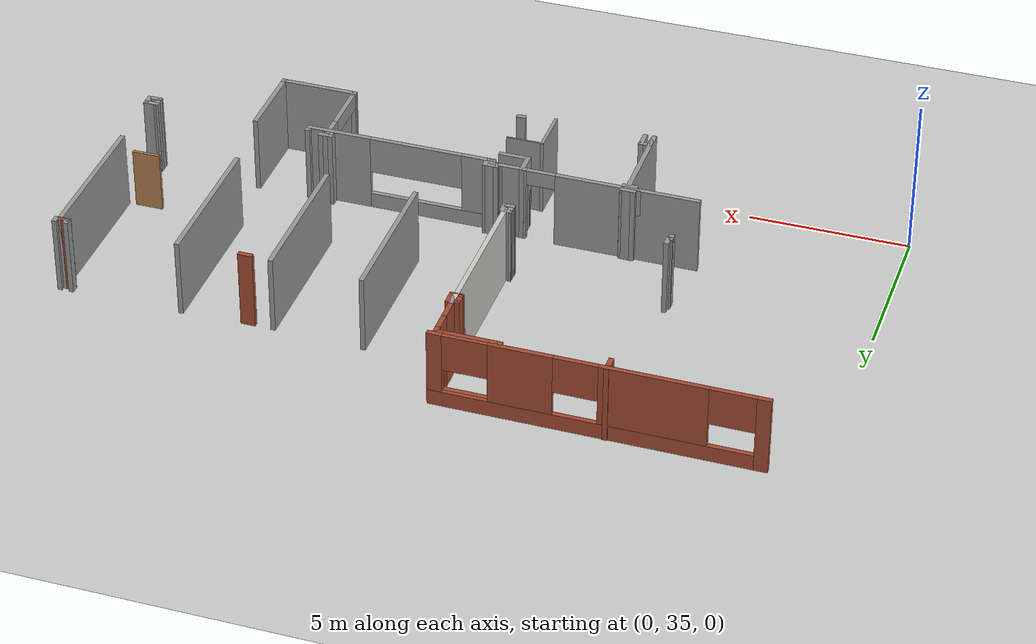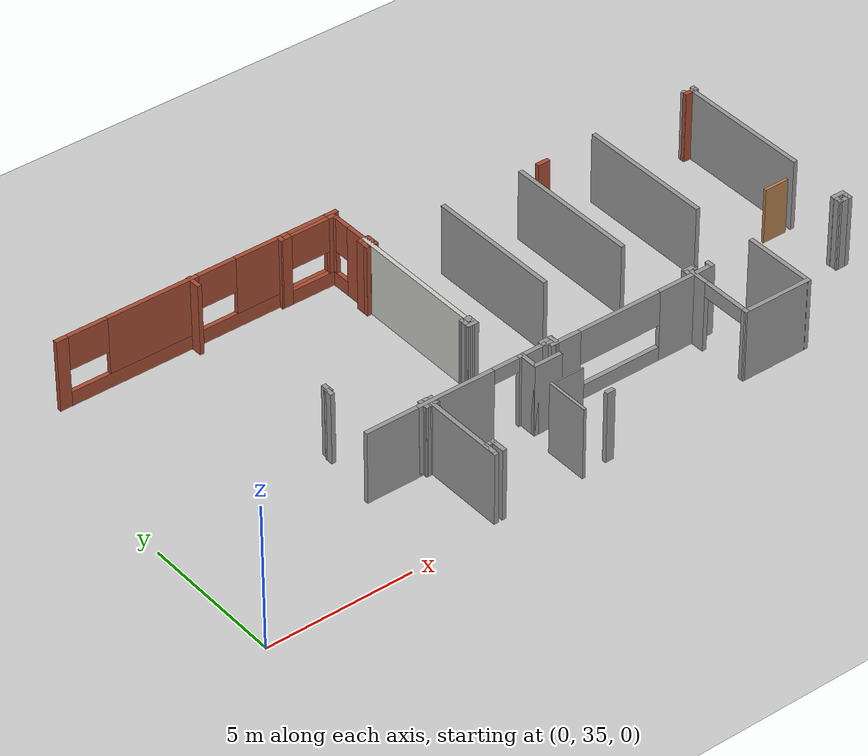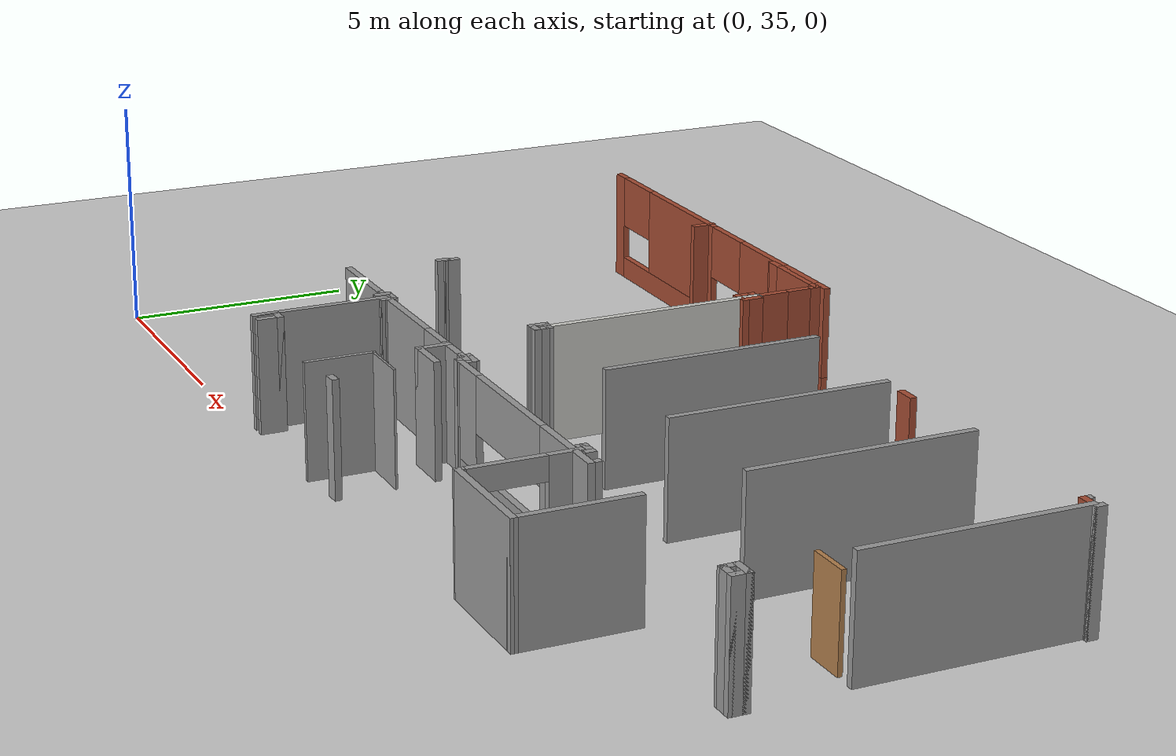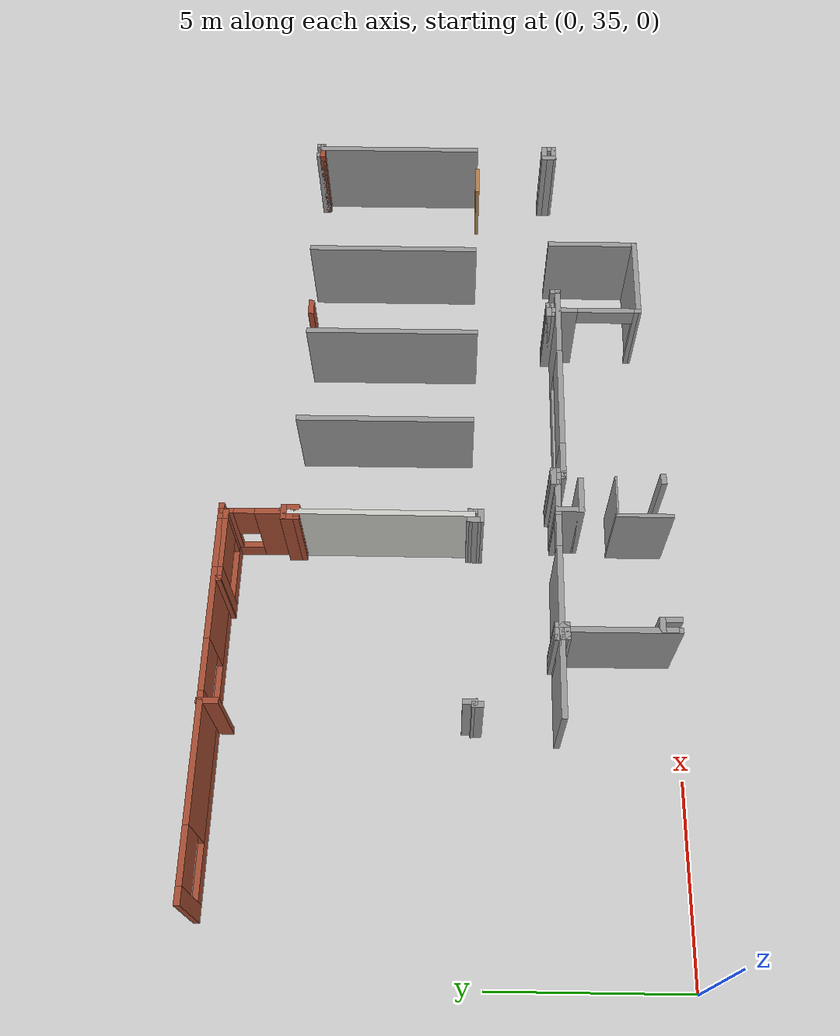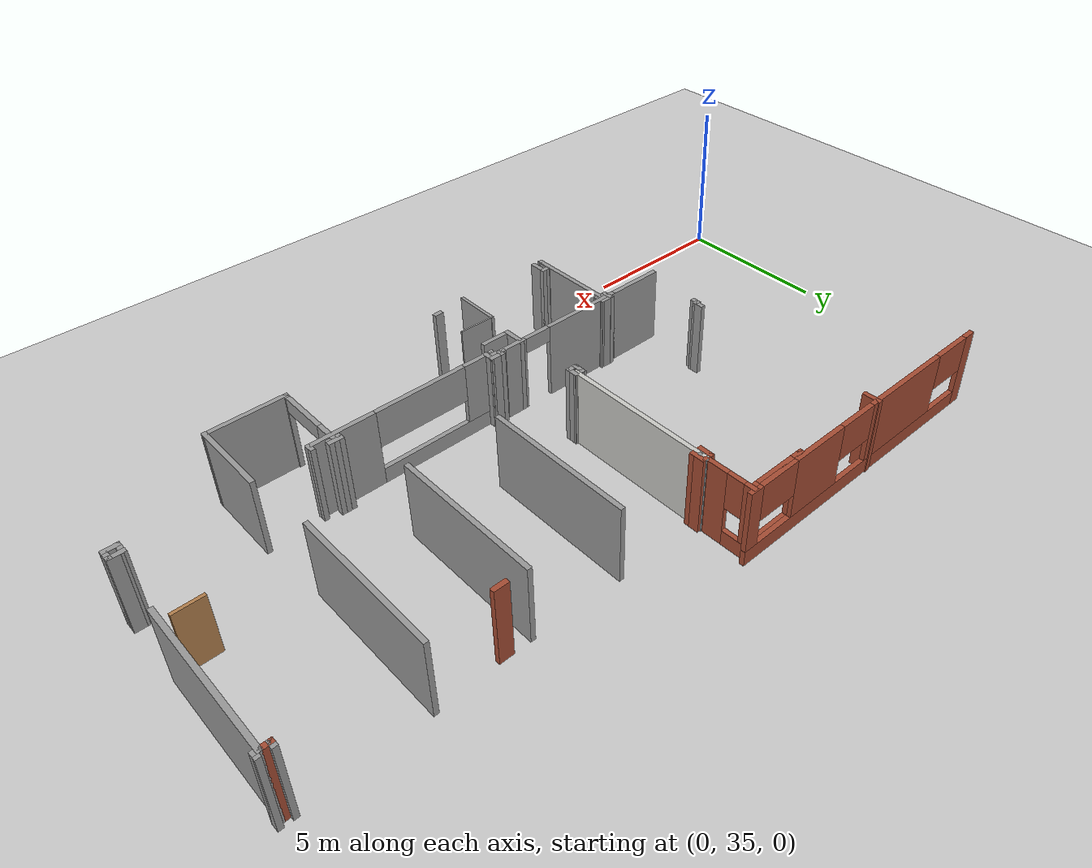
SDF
<sdf version="1.6">
 <world name="default">
  <model name="ground_plane">
   <static>1</static>
   <link name="link">
    <collision name="collision">
     <geometry><plane><normal>0 0 1</normal><size>100 100</size></plane></geometry>
     <surface><friction><ode><mu>100</mu><mu2>50</mu2></ode></friction></surface>
    </collision>
    <visual name="visual">
     <cast_shadows>0</cast_shadows>
     <geometry><plane><normal>0 0 1</normal><size>100 100</size></plane></geometry>
     <material>
      <script><uri>file://media/materials/scripts/gazebo.material</uri><name>Gazebo/Grey</name></script>
     </material>
    </visual>
   </link>
  </model>
  <model name="CVSSP">
   <pose>23.8714 24.094 0 0 -0 0</pose>
   <link name="Wall_21">
    <pose>-6.21845 12.8269 0 0 0 -1.57055</pose>
    <visual name="Wall_21_Visual_0">
     <pose>-0.893143 0 1.25 0 -0 0</pose>
     <geometry><box><size>0.719046 0.15 2.5</size></box></geometry>
     <material>
      <script><uri>file://media/materials/scripts/gazebo.material</uri><name>Gazebo/Grey</name></script>
      <ambient>0.588235 0.588235 0.588235 1</ambient>
     </material>
    </visual>
    <collision name="Wall_21_Collision_0">
     <geometry><box><size>0.719046 0.15 2.5</size></box></geometry>
     <pose>-0.893143 0 1.25 0 -0 0</pose>
    </collision>
    <visual name="Wall_21_Visual_1">
     <pose>1.15058 0 1.25 0 -0 0</pose>
     <geometry><box><size>0.204165 0.15 2.5</size></box></geometry>
     <material>
      <script><uri>file://media/materials/scripts/gazebo.material</uri><name>Gazebo/Grey</name></script>
      <ambient>0.588235 0.588235 0.588235 1</ambient>
     </material>
    </visual>
    <collision name="Wall_21_Collision_1">
     <geometry><box><size>0.204165 0.15 2.5</size></box></geometry>
     <pose>1.15058 0 1.25 0 -0 0</pose>
    </collision>
    <visual name="Wall_21_Visual_2">
     <pose>0.257441 0 2.25 0 -0 0</pose>
     <geometry><box><size>1.58212 0.15 0.5</size></box></geometry>
     <material>
      <script><uri>file://media/materials/scripts/gazebo.material</uri><name>Gazebo/Grey</name></script>
      <ambient>0.588235 0.588235 0.588235 1</ambient>
     </material>
    </visual>
    <collision name="Wall_21_Collision_2">
     <geometry><box><size>1.58212 0.15 0.5</size></box></geometry>
     <pose>0.257441 0 2.25 0 -0 0</pose>
    </collision>
   </link>
   <link name="Wall_24">
    <collision name="Wall_24_Collision">
     <geometry><box><size>2.49412 0.15 2.5</size></box></geometry>
     <pose>0 0 1.25 0 -0 0</pose>
    </collision>
    <visual name="Wall_24_Visual">
     <pose>0 0 1.25 0 -0 0</pose>
     <geometry><box><size>2.49412 0.15 2.5</size></box></geometry>
     <material>
      <script><uri>file://media/materials/scripts/gazebo.material</uri><name>Gazebo/Grey</name></script>
      <ambient>0.588235 0.588235 0.588235 1</ambient>
     </material>
    </visual>
    <pose>-5.0461 11.6485 0 0 0 -0.000618</pose>
   </link>
   <link name="Wall_25">
    <collision name="Wall_25_Collision">
     <geometry><box><size>2.54698 0.15 2.5</size></box></geometry>
     <pose>0 0 1.25 0 -0 0</pose>
    </collision>
    <visual name="Wall_25_Visual">
     <pose>0 0 1.25 0 -0 0</pose>
     <geometry><box><size>2.54698 0.15 2.5</size></box></geometry>
     <material>
      <script><uri>file://media/materials/scripts/gazebo.material</uri><name>Gazebo/Grey</name></script>
      <ambient>0.588235 0.588235 0.588235 1</ambient>
     </material>
    </visual>
    <pose>-3.87405 12.8463 0 0 -0 1.5708</pose>
   </link>
   <link name="Wall_302">
    <collision name="Wall_302_Collision">
     <geometry><box><size>0.356824 0.15 2.5</size></box></geometry>
     <pose>0 0 1.25 0 -0 0</pose>
    </collision>
    <visual name="Wall_302_Visual">
     <pose>0 0 1.25 0 -0 0</pose>
     <geometry><box><size>0.356824 0.15 2.5</size></box></geometry>
     <material>
      <script><uri>file://media/materials/scripts/gazebo.material</uri><name>Gazebo/Grey</name></script>
      <ambient>1 1 1 1</ambient>
     </material>
    </visual>
    <pose>-12.6319 21.0442 0 0 0 -1.55451</pose>
   </link>
   <link name="Wall_309">
    <collision name="Wall_309_Collision">
     <geometry><box><size>4.97737 0.15 2.5</size></box></geometry>
     <pose>0 0 1.25 0 -0 0</pose>
    </collision>
    <visual name="Wall_309_Visual">
     <pose>0 0 1.25 0 -0 0</pose>
     <geometry><box><size>4.97737 0.15 2.5</size></box></geometry>
     <material>
      <script><uri>file://media/materials/scripts/gazebo.material</uri><name>Gazebo/CeilingTiled</name></script>
      <ambient>0.588235 0.588235 0.588235 1</ambient>
     </material>
    </visual>
    <pose>-12.6619 18.6826 0 0 -0 1.56838</pose>
   </link>
   <link name="Wall_311">
    <collision name="Wall_311_Collision">
     <geometry><box><size>4.75 0.15 2.5</size></box></geometry>
     <pose>0 0 1.25 0 -0 0</pose>
    </collision>
    <visual name="Wall_311_Visual">
     <pose>0 0 1.25 0 -0 0</pose>
     <geometry><box><size>4.75 0.15 2.5</size></box></geometry>
     <material>
      <script><uri>file://media/materials/scripts/gazebo.material</uri><name>Gazebo/Grey</name></script>
      <ambient>0.588235 0.588235 0.588235 1</ambient>
     </material>
    </visual>
    <pose>-9.85033 18.612 0 0 0 -1.5708</pose>
   </link>
   <link name="Wall_315">
    <collision name="Wall_315_Collision">
     <geometry><box><size>4.75 0.15 2.5</size></box></geometry>
     <pose>0 0 1.25 0 -0 0</pose>
    </collision>
    <visual name="Wall_315_Visual">
     <pose>0 0 1.25 0 -0 0</pose>
     <geometry><box><size>4.75 0.15 2.5</size></box></geometry>
     <material>
      <script><uri>file://media/materials/scripts/gazebo.material</uri><name>Gazebo/Grey</name></script>
      <ambient>0.588235 0.588235 0.588235 1</ambient>
     </material>
    </visual>
    <pose>-7.00685 18.5251 0 0 -0 1.5708</pose>
   </link>
   <link name="Wall_318">
    <collision name="Wall_318_Collision">
     <geometry><box><size>4.79 0.15 2.5</size></box></geometry>
     <pose>0 0 1.25 0 -0 0</pose>
    </collision>
    <visual name="Wall_318_Visual">
     <pose>0 0 1.25 0 -0 0</pose>
     <geometry><box><size>4.79 0.15 2.5</size></box></geometry>
     <material>
      <script><uri>file://media/materials/scripts/gazebo.material</uri><name>Gazebo/Grey</name></script>
      <ambient>1 1 1 1</ambient>
     </material>
    </visual>
    <pose>-4.1133 18.5854 0 0 0 -1.5708</pose>
   </link>
   <link name="Wall_320">
    <collision name="Wall_320_Collision">
     <geometry><box><size>4.75 0.15 2.5</size></box></geometry>
     <pose>0 0 1.25 0 -0 0</pose>
    </collision>
    <visual name="Wall_320_Visual">
     <pose>0 0 1.25 0 -0 0</pose>
     <geometry><box><size>4.75 0.15 2.5</size></box></geometry>
     <material>
      <script><uri>file://media/materials/scripts/gazebo.material</uri><name>Gazebo/Grey</name></script>
      <ambient>0.588235 0.588235 0.588235 1</ambient>
     </material>
    </visual>
    <pose>-0.323303 18.5354 0 0 -0 1.5708</pose>
   </link>
   <link name="Wall_326">
    <collision name="Wall_326_Collision">
     <geometry><box><size>0.41 0.15 2.5</size></box></geometry>
     <pose>0 0 1.25 0 -0 0</pose>
    </collision>
    <visual name="Wall_326_Visual">
     <pose>0 0 1.25 0 -0 0</pose>
     <geometry><box><size>0.41 0.15 2.5</size></box></geometry>
     <material>
      <script><uri>file://media/materials/scripts/gazebo.material</uri><name>Gazebo/Bricks</name></script>
      <ambient>1 1 1 1</ambient>
     </material>
    </visual>
    <pose>-0.453303 20.8354 0 0 -0 3.14159</pose>
   </link>
   <link name="Wall_327">
    <collision name="Wall_327_Collision">
     <geometry><box><size>0.25 0.15 2.5</size></box></geometry>
     <pose>0 0 1.25 0 -0 0</pose>
    </collision>
    <visual name="Wall_327_Visual">
     <pose>0 0 1.25 0 -0 0</pose>
     <geometry><box><size>0.25 0.15 2.5</size></box></geometry>
     <material>
      <script><uri>file://media/materials/scripts/gazebo.material</uri><name>Gazebo/Grey</name></script>
      <ambient>1 1 1 1</ambient>
     </material>
    </visual>
    <pose>-0.583303 20.8854 0 0 -0 1.5708</pose>
   </link>
   <link name="Wall_329">
    <collision name="Wall_329_Collision">
     <geometry><box><size>0.25 0.15 2.5</size></box></geometry>
     <pose>0 0 1.25 0 -0 0</pose>
    </collision>
    <visual name="Wall_329_Visual">
     <pose>0 0 1.25 0 -0 0</pose>
     <geometry><box><size>0.25 0.15 2.5</size></box></geometry>
     <material>
      <script><uri>file://media/materials/scripts/gazebo.material</uri><name>Gazebo/Grey</name></script>
      <ambient>1 1 1 1</ambient>
     </material>
    </visual>
    <pose>-0.273303 20.8354 0 0 -0 0</pose>
   </link>
   <link name="Wall_330">
    <collision name="Wall_330_Collision">
     <geometry><box><size>0.25 0.15 2.5</size></box></geometry>
     <pose>0 0 1.25 0 -0 0</pose>
    </collision>
    <visual name="Wall_330_Visual">
     <pose>0 0 1.25 0 -0 0</pose>
     <geometry><box><size>0.25 0.15 2.5</size></box></geometry>
     <material>
      <script><uri>file://media/materials/scripts/gazebo.material</uri><name>Gazebo/Grey</name></script>
      <ambient>1 1 1 1</ambient>
     </material>
    </visual>
    <pose>-0.223303 20.8854 0 0 -0 1.5708</pose>
   </link>
   <link name="Wall_359">
    <pose>-17.445 22.7195 0 0 0 -0.002346</pose>
    <visual name="Wall_359_Visual_0">
     <pose>-4.79661 0 1.25 0 -0 0</pose>
     <geometry><box><size>0.418451 0.15 2.5</size></box></geometry>
     <material>
      <script><uri>file://media/materials/scripts/gazebo.material</uri><name>Gazebo/Bricks</name></script>
      <ambient>1 1 1 1</ambient>
     </material>
    </visual>
    <collision name="Wall_359_Collision_0">
     <geometry><box><size>0.418451 0.15 2.5</size></box></geometry>
     <pose>-4.79661 0 1.25 0 -0 0</pose>
    </collision>
    <visual name="Wall_359_Visual_1">
     <pose>0.209225 0 0.25 0 -0 0</pose>
     <geometry><box><size>9.59323 0.15 0.5</size></box></geometry>
     <material>
      <script><uri>file://media/materials/scripts/gazebo.material</uri><name>Gazebo/Bricks</name></script>
      <ambient>1 1 1 1</ambient>
     </material>
    </visual>
    <collision name="Wall_359_Collision_1">
     <geometry><box><size>9.59323 0.15 0.5</size></box></geometry>
     <pose>0.209225 0 0.25 0 -0 0</pose>
    </collision>
    <visual name="Wall_359_Visual_2">
     <pose>-1.63846 0 1.5 0 -0 0</pose>
     <geometry><box><size>3.18757 0.15 2</size></box></geometry>
     <material>
      <script><uri>file://media/materials/scripts/gazebo.material</uri><name>Gazebo/Bricks</name></script>
      <ambient>1 1 1 1</ambient>
     </material>
    </visual>
    <collision name="Wall_359_Collision_2">
     <geometry><box><size>3.18757 0.15 2</size></box></geometry>
     <pose>-1.63846 0 1.5 0 -0 0</pose>
    </collision>
    <visual name="Wall_359_Visual_3">
     <pose>2.23874 0 1.5 0 -0 0</pose>
     <geometry><box><size>1.91586 0.15 2</size></box></geometry>
     <material>
      <script><uri>file://media/materials/scripts/gazebo.material</uri><name>Gazebo/Bricks</name></script>
      <ambient>1 1 1 1</ambient>
     </material>
    </visual>
    <collision name="Wall_359_Collision_3">
     <geometry><box><size>1.91586 0.15 2</size></box></geometry>
     <pose>2.23874 0 1.5 0 -0 0</pose>
    </collision>
    <visual name="Wall_359_Visual_4">
     <pose>4.78077 0 1.5 0 -0 0</pose>
     <geometry><box><size>0.450139 0.15 2</size></box></geometry>
     <material>
      <script><uri>file://media/materials/scripts/gazebo.material</uri><name>Gazebo/Bricks</name></script>
      <ambient>1 1 1 1</ambient>
     </material>
    </visual>
    <collision name="Wall_359_Collision_4">
     <geometry><box><size>0.450139 0.15 2</size></box></geometry>
     <pose>4.78077 0 1.5 0 -0 0</pose>
    </collision>
    <visual name="Wall_359_Visual_5">
     <pose>-3.90982 0 1.9 0 -0 0</pose>
     <geometry><box><size>1.35514 0.15 1.2</size></box></geometry>
     <material>
      <script><uri>file://media/materials/scripts/gazebo.material</uri><name>Gazebo/Bricks</name></script>
      <ambient>1 1 1 1</ambient>
     </material>
    </visual>
    <collision name="Wall_359_Collision_5">
     <geometry><box><size>1.35514 0.15 1.2</size></box></geometry>
     <pose>-3.90982 0 1.9 0 -0 0</pose>
    </collision>
    <visual name="Wall_359_Visual_6">
     <pose>0.618067 0 1.9 0 -0 0</pose>
     <geometry><box><size>1.32548 0.15 1.2</size></box></geometry>
     <material>
      <script><uri>file://media/materials/scripts/gazebo.material</uri><name>Gazebo/Bricks</name></script>
      <ambient>1 1 1 1</ambient>
     </material>
    </visual>
    <collision name="Wall_359_Collision_6">
     <geometry><box><size>1.32548 0.15 1.2</size></box></geometry>
     <pose>0.618067 0 1.9 0 -0 0</pose>
    </collision>
    <visual name="Wall_359_Visual_7">
     <pose>3.87618 0 1.9 0 -0 0</pose>
     <geometry><box><size>1.35903 0.15 1.2</size></box></geometry>
     <material>
      <script><uri>file://media/materials/scripts/gazebo.material</uri><name>Gazebo/Bricks</name></script>
      <ambient>1 1 1 1</ambient>
     </material>
    </visual>
    <collision name="Wall_359_Collision_7">
     <geometry><box><size>1.35903 0.15 1.2</size></box></geometry>
     <pose>3.87618 0 1.9 0 -0 0</pose>
    </collision>
   </link>
   <link name="Wall_364">
    <pose>-12.6622 21.8833 0 0 -0 1.57855</pose>
    <visual name="Wall_364_Visual_0">
     <pose>-0.444878 0 1.25 0 -0 0</pose>
     <geometry><box><size>0.834848 0.15 2.5</size></box></geometry>
     <material>
      <script><uri>file://media/materials/scripts/gazebo.material</uri><name>Gazebo/Bricks</name></script>
      <ambient>1 1 1 1</ambient>
     </material>
    </visual>
    <collision name="Wall_364_Collision_0">
     <geometry><box><size>0.834848 0.15 2.5</size></box></geometry>
     <pose>-0.444878 0 1.25 0 -0 0</pose>
    </collision>
    <visual name="Wall_364_Visual_1">
     <pose>0.417424 0 0.25 0 -0 0</pose>
     <geometry><box><size>0.889756 0.15 0.5</size></box></geometry>
     <material>
      <script><uri>file://media/materials/scripts/gazebo.material</uri><name>Gazebo/Bricks</name></script>
      <ambient>1 1 1 1</ambient>
     </material>
    </visual>
    <collision name="Wall_364_Collision_1">
     <geometry><box><size>0.889756 0.15 0.5</size></box></geometry>
     <pose>0.417424 0 0.25 0 -0 0</pose>
    </collision>
    <visual name="Wall_364_Visual_2">
     <pose>0.687151 0 1.5 0 -0 0</pose>
     <geometry><box><size>0.350302 0.15 2</size></box></geometry>
     <material>
      <script><uri>file://media/materials/scripts/gazebo.material</uri><name>Gazebo/Bricks</name></script>
      <ambient>1 1 1 1</ambient>
     </material>
    </visual>
    <collision name="Wall_364_Collision_2">
     <geometry><box><size>0.350302 0.15 2</size></box></geometry>
     <pose>0.687151 0 1.5 0 -0 0</pose>
    </collision>
    <visual name="Wall_364_Visual_3">
     <pose>0.242273 0 1.9 0 -0 0</pose>
     <geometry><box><size>0.539454 0.15 1.2</size></box></geometry>
     <material>
      <script><uri>file://media/materials/scripts/gazebo.material</uri><name>Gazebo/Bricks</name></script>
      <ambient>1 1 1 1</ambient>
     </material>
    </visual>
    <collision name="Wall_364_Collision_3">
     <geometry><box><size>0.539454 0.15 1.2</size></box></geometry>
     <pose>0.242273 0 1.9 0 -0 0</pose>
    </collision>
   </link>
   <link name="Wall_366">
    <collision name="Wall_366_Collision">
     <geometry><box><size>0.25 0.15 2.5</size></box></geometry>
     <pose>0 0 1.25 0 -0 0</pose>
    </collision>
    <visual name="Wall_366_Visual">
     <pose>0 0 1.25 0 -0 0</pose>
     <geometry><box><size>0.25 0.15 2.5</size></box></geometry>
     <material>
      <script><uri>file://media/materials/scripts/gazebo.material</uri><name>Gazebo/Bricks</name></script>
      <ambient>1 1 1 1</ambient>
     </material>
    </visual>
    <pose>-14.5641 22.637 0 0 0 -1.5708</pose>
   </link>
   <link name="Wall_367">
    <pose>-13.6341 22.584 0 0 0 -0.00315</pose>
    <visual name="Wall_367_Visual_0">
     <pose>-0.809801 0 1.25 0 -0 0</pose>
     <geometry><box><size>0.390731 0.15 2.5</size></box></geometry>
     <material>
      <script><uri>file://media/materials/scripts/gazebo.material</uri><name>Gazebo/Bricks</name></script>
      <ambient>1 1 1 1</ambient>
     </material>
    </visual>
    <collision name="Wall_367_Collision_0">
     <geometry><box><size>0.390731 0.15 2.5</size></box></geometry>
     <pose>-0.809801 0 1.25 0 -0 0</pose>
    </collision>
    <visual name="Wall_367_Visual_1">
     <pose>0.195366 0 0.25 0 -0 0</pose>
     <geometry><box><size>1.6196 0.15 0.5</size></box></geometry>
     <material>
      <script><uri>file://media/materials/scripts/gazebo.material</uri><name>Gazebo/Bricks</name></script>
      <ambient>1 1 1 1</ambient>
     </material>
    </visual>
    <collision name="Wall_367_Collision_1">
     <geometry><box><size>1.6196 0.15 0.5</size></box></geometry>
     <pose>0.195366 0 0.25 0 -0 0</pose>
    </collision>
    <visual name="Wall_367_Visual_2">
     <pose>0.874844 0 1.5 0 -0 0</pose>
     <geometry><box><size>0.260644 0.15 2</size></box></geometry>
     <material>
      <script><uri>file://media/materials/scripts/gazebo.material</uri><name>Gazebo/Bricks</name></script>
      <ambient>1 1 1 1</ambient>
     </material>
    </visual>
    <collision name="Wall_367_Collision_2">
     <geometry><box><size>0.260644 0.15 2</size></box></geometry>
     <pose>0.874844 0 1.5 0 -0 0</pose>
    </collision>
    <visual name="Wall_367_Visual_3">
     <pose>0.065044 0 1.9 0 -0 0</pose>
     <geometry><box><size>1.35896 0.15 1.2</size></box></geometry>
     <material>
      <script><uri>file://media/materials/scripts/gazebo.material</uri><name>Gazebo/Bricks</name></script>
      <ambient>1 1 1 1</ambient>
     </material>
    </visual>
    <collision name="Wall_367_Collision_3">
     <geometry><box><size>1.35896 0.15 1.2</size></box></geometry>
     <pose>0.065044 0 1.9 0 -0 0</pose>
    </collision>
   </link>
   <link name="Wall_371">
    <collision name="Wall_371_Collision">
     <geometry><box><size>0.55293 0.15 2.5</size></box></geometry>
     <pose>0 0 1.25 0 -0 0</pose>
    </collision>
    <visual name="Wall_371_Visual">
     <pose>0 0 1.25 0 -0 0</pose>
     <geometry><box><size>0.55293 0.15 2.5</size></box></geometry>
     <material>
      <script><uri>file://media/materials/scripts/gazebo.material</uri><name>Gazebo/Bricks</name></script>
      <ambient>1 1 1 1</ambient>
     </material>
    </visual>
    <pose>-17.7324 22.5482 0 0 -0 1.5708</pose>
   </link>
   <link name="Wall_416">
    <collision name="Wall_416_Collision">
     <geometry><box><size>3 0.15 2.5</size></box></geometry>
     <pose>0 0 1.25 0 -0 0</pose>
    </collision>
    <visual name="Wall_416_Visual">
     <pose>0 0 1.25 0 -0 0</pose>
     <geometry><box><size>3 0.15 2.5</size></box></geometry>
     <material>
      <script><uri>file://media/materials/scripts/gazebo.material</uri><name>Gazebo/Grey</name></script>
      <ambient>0.588235 0.588235 0.588235 1</ambient>
     </material>
    </visual>
    <pose>-15.7939 12.5789 0 0 0 -1.5708</pose>
   </link>
   <link name="Wall_419">
    <collision name="Wall_419_Collision">
     <geometry><box><size>1.502 0.1 2.5</size></box></geometry>
     <pose>0 0 1.25 0 -0 0</pose>
    </collision>
    <visual name="Wall_419_Visual">
     <pose>0 0 1.25 0 -0 0</pose>
     <geometry><box><size>1.502 0.1 2.5</size></box></geometry>
     <material>
      <script><uri>file://media/materials/scripts/gazebo.material</uri><name>Gazebo/Grey</name></script>
      <ambient>0.588235 0.588235 0.588235 1</ambient>
     </material>
    </visual>
    <pose>-12.6454 11.8362 0 0 -0 1.5708</pose>
   </link>
   <link name="Wall_420">
    <collision name="Wall_420_Collision">
     <geometry><box><size>1.18498 0.05 2.5</size></box></geometry>
     <pose>0 0 1.25 0 -0 0</pose>
    </collision>
    <visual name="Wall_420_Visual">
     <pose>0 0 1.25 0 -0 0</pose>
     <geometry><box><size>1.18498 0.05 2.5</size></box></geometry>
     <material>
      <script><uri>file://media/materials/scripts/gazebo.material</uri><name>Gazebo/Grey</name></script>
      <ambient>1 1 1 1</ambient>
     </material>
    </visual>
    <pose>-12.0954 12.5375 0 0 -0 0.000414</pose>
   </link>
   <link name="Wall_422">
    <collision name="Wall_422_Collision">
     <geometry><box><size>0.75 0.15 2.5</size></box></geometry>
     <pose>0 0 1.25 0 -0 0</pose>
    </collision>
    <visual name="Wall_422_Visual">
     <pose>0 0 1.25 0 -0 0</pose>
     <geometry><box><size>0.75 0.15 2.5</size></box></geometry>
     <material>
      <script><uri>file://media/materials/scripts/gazebo.material</uri><name>Gazebo/Grey</name></script>
      <ambient>1 1 1 1</ambient>
     </material>
    </visual>
    <pose>-12.4883 13.7563 0 0 0 -1.5708</pose>
   </link>
   <link name="Wall_423">
    <collision name="Wall_423_Collision">
     <geometry><box><size>1 0.15 2.5</size></box></geometry>
     <pose>0 0 1.25 0 -0 0</pose>
    </collision>
    <visual name="Wall_423_Visual">
     <pose>0 0 1.25 0 -0 0</pose>
     <geometry><box><size>1 0.15 2.5</size></box></geometry>
     <material>
      <script><uri>file://media/materials/scripts/gazebo.material</uri><name>Gazebo/Grey</name></script>
      <ambient>1 1 1 1</ambient>
     </material>
    </visual>
    <pose>-12.0633 13.4563 0 0 -0 0</pose>
   </link>
   <link name="Wall_619">
    <collision name="Wall_619_Collision">
     <geometry><box><size>0.491176 0.15 2.5</size></box></geometry>
     <pose>0 0 1.25 0 -0 0</pose>
    </collision>
    <visual name="Wall_619_Visual">
     <pose>0 0 1.25 0 -0 0</pose>
     <geometry><box><size>0.491176 0.15 2.5</size></box></geometry>
     <material>
      <script><uri>file://media/materials/scripts/gazebo.material</uri><name>Gazebo/Grey</name></script>
      <ambient>1 1 1 1</ambient>
     </material>
    </visual>
    <pose>-0.431731 14.1578 0 0 -0 0</pose>
   </link>
   <link name="Wall_620">
    <collision name="Wall_620_Collision">
     <geometry><box><size>0.421785 0.15 2.5</size></box></geometry>
     <pose>0 0 1.25 0 -0 0</pose>
    </collision>
    <visual name="Wall_620_Visual">
     <pose>0 0 1.25 0 -0 0</pose>
     <geometry><box><size>0.421785 0.15 2.5</size></box></geometry>
     <material>
      <script><uri>file://media/materials/scripts/gazebo.material</uri><name>Gazebo/Grey</name></script>
      <ambient>1 1 1 1</ambient>
     </material>
    </visual>
    <pose>-0.261143 14.0219 0 0 0 -1.5708</pose>
   </link>
   <link name="Wall_621">
    <collision name="Wall_621_Collision">
     <geometry><box><size>0.479611 0.15 2.5</size></box></geometry>
     <pose>0 0 1.25 0 -0 0</pose>
    </collision>
    <visual name="Wall_621_Visual">
     <pose>0 0 1.25 0 -0 0</pose>
     <geometry><box><size>0.479611 0.15 2.5</size></box></geometry>
     <material>
      <script><uri>file://media/materials/scripts/gazebo.material</uri><name>Gazebo/Grey</name></script>
      <ambient>1 1 1 1</ambient>
     </material>
    </visual>
    <pose>-0.425949 13.8861 0 0 -0 3.14159</pose>
   </link>
   <link name="Wall_622">
    <collision name="Wall_622_Collision">
     <geometry><box><size>0.421846 0.15 2.5</size></box></geometry>
     <pose>0 0 1.25 0 -0 0</pose>
    </collision>
    <visual name="Wall_622_Visual">
     <pose>0 0 1.25 0 -0 0</pose>
     <geometry><box><size>0.421846 0.15 2.5</size></box></geometry>
     <material>
      <script><uri>file://media/materials/scripts/gazebo.material</uri><name>Gazebo/Grey</name></script>
      <ambient>1 1 1 1</ambient>
     </material>
    </visual>
    <pose>-0.593646 14.0219 0 0 -0 1.59207</pose>
   </link>
   <link name="Wall_624">
    <collision name="Wall_624_Collision">
     <geometry><box><size>0.291595 0.15 2.5</size></box></geometry>
     <pose>0 0 1.25 0 -0 0</pose>
    </collision>
    <visual name="Wall_624_Visual">
     <pose>0 0 1.25 0 -0 0</pose>
     <geometry><box><size>0.291595 0.15 2.5</size></box></geometry>
     <material>
      <script><uri>file://media/materials/scripts/gazebo.material</uri><name>Gazebo/Grey</name></script>
      <ambient>1 1 1 1</ambient>
     </material>
    </visual>
    <pose>-5.57863 13.9687 0 0 0 -1.5708</pose>
   </link>
   <link name="Wall_625">
    <pose>-8.55211 13.8979 0 0 -0 3.14159</pose>
    <visual name="Wall_625_Visual_0">
     <pose>-2.01383 0 1.25 0 -0 0</pose>
     <geometry><box><size>2.06931 0.15 2.5</size></box></geometry>
     <material>
      <script><uri>file://media/materials/scripts/gazebo.material</uri><name>Gazebo/Grey</name></script>
      <ambient>1 1 1 1</ambient>
     </material>
    </visual>
    <collision name="Wall_625_Collision_0">
     <geometry><box><size>2.06931 0.15 2.5</size></box></geometry>
     <pose>-2.01383 0 1.25 0 -0 0</pose>
    </collision>
    <visual name="Wall_625_Visual_1">
     <pose>1.03465 0 0.25 0 -0 0</pose>
     <geometry><box><size>4.02766 0.15 0.5</size></box></geometry>
     <material>
      <script><uri>file://media/materials/scripts/gazebo.material</uri><name>Gazebo/Grey</name></script>
      <ambient>1 1 1 1</ambient>
     </material>
    </visual>
    <collision name="Wall_625_Collision_1">
     <geometry><box><size>4.02766 0.15 0.5</size></box></geometry>
     <pose>1.03465 0 0.25 0 -0 0</pose>
    </collision>
    <visual name="Wall_625_Visual_2">
     <pose>2.51124 0 1.5 0 -0 0</pose>
     <geometry><box><size>1.07449 0.15 2</size></box></geometry>
     <material>
      <script><uri>file://media/materials/scripts/gazebo.material</uri><name>Gazebo/Grey</name></script>
      <ambient>1 1 1 1</ambient>
     </material>
    </visual>
    <collision name="Wall_625_Collision_2">
     <geometry><box><size>1.07449 0.15 2</size></box></geometry>
     <pose>2.51124 0 1.5 0 -0 0</pose>
    </collision>
    <visual name="Wall_625_Visual_3">
     <pose>0.497408 0 1.9 0 -0 0</pose>
     <geometry><box><size>2.95317 0.15 1.2</size></box></geometry>
     <material>
      <script><uri>file://media/materials/scripts/gazebo.material</uri><name>Gazebo/Grey</name></script>
      <ambient>1 1 1 1</ambient>
     </material>
    </visual>
    <collision name="Wall_625_Collision_3">
     <geometry><box><size>2.95317 0.15 1.2</size></box></geometry>
     <pose>0.497408 0 1.9 0 -0 0</pose>
    </collision>
   </link>
   <link name="Wall_626">
    <collision name="Wall_626_Collision">
     <geometry><box><size>0.15 0.15 2.5</size></box></geometry>
     <pose>0 0 1.25 0 -0 0</pose>
    </collision>
    <visual name="Wall_626_Visual">
     <pose>0 0 1.25 0 -0 0</pose>
     <geometry><box><size>0.15 0.15 2.5</size></box></geometry>
     <material>
      <script><uri>file://media/materials/scripts/gazebo.material</uri><name>Gazebo/Grey</name></script>
      <ambient>1 1 1 1</ambient>
     </material>
    </visual>
    <pose>-11.5256 13.8979 0 0 -0 0</pose>
   </link>
   <link name="Wall_628">
    <collision name="Wall_628_Collision">
     <geometry><box><size>0.251643 0.15 2.5</size></box></geometry>
     <pose>0 0 1.25 0 -0 0</pose>
    </collision>
    <visual name="Wall_628_Visual">
     <pose>0 0 1.25 0 -0 0</pose>
     <geometry><box><size>0.251643 0.15 2.5</size></box></geometry>
     <material>
      <script><uri>file://media/materials/scripts/gazebo.material</uri><name>Gazebo/Grey</name></script>
      <ambient>1 1 1 1</ambient>
     </material>
    </visual>
    <pose>-6.3574 14.1103 0 0 -0 1.5708</pose>
   </link>
   <link name="Wall_629">
    <collision name="Wall_629_Collision">
     <geometry><box><size>0.453417 0.15 2.5</size></box></geometry>
     <pose>0 0 1.25 0 -0 0</pose>
    </collision>
    <visual name="Wall_629_Visual">
     <pose>0 0 1.25 0 -0 0</pose>
     <geometry><box><size>0.453417 0.15 2.5</size></box></geometry>
     <material>
      <script><uri>file://media/materials/scripts/gazebo.material</uri><name>Gazebo/Grey</name></script>
      <ambient>1 1 1 1</ambient>
     </material>
    </visual>
    <pose>-6.20569 14.1608 0 0 -0 0</pose>
   </link>
   <link name="Wall_630">
    <collision name="Wall_630_Collision">
     <geometry><box><size>0.220797 0.15 2.5</size></box></geometry>
     <pose>0 0 1.25 0 -0 0</pose>
    </collision>
    <visual name="Wall_630_Visual">
     <pose>0 0 1.25 0 -0 0</pose>
     <geometry><box><size>0.220797 0.15 2.5</size></box></geometry>
     <material>
      <script><uri>file://media/materials/scripts/gazebo.material</uri><name>Gazebo/Grey</name></script>
      <ambient>1 1 1 1</ambient>
     </material>
    </visual>
    <pose>-6.05398 14.1255 0 0 0 -1.5708</pose>
   </link>
   <link name="Wall_632">
    <collision name="Wall_632_Collision">
     <geometry><box><size>0.220797 0.15 2.5</size></box></geometry>
     <pose>0 0 1.25 0 -0 0</pose>
    </collision>
    <visual name="Wall_632_Visual">
     <pose>0 0 1.25 0 -0 0</pose>
     <geometry><box><size>0.220797 0.15 2.5</size></box></geometry>
     <material>
      <script><uri>file://media/materials/scripts/gazebo.material</uri><name>Gazebo/Grey</name></script>
      <ambient>1 1 1 1</ambient>
     </material>
    </visual>
    <pose>-11.6975 14.1255 0 0 -0 1.5708</pose>
   </link>
   <link name="Wall_633">
    <collision name="Wall_633_Collision">
     <geometry><box><size>0.494021 0.15 2.5</size></box></geometry>
     <pose>0 0 1.25 0 -0 0</pose>
    </collision>
    <visual name="Wall_633_Visual">
     <pose>0 0 1.25 0 -0 0</pose>
     <geometry><box><size>0.494021 0.15 2.5</size></box></geometry>
     <material>
      <script><uri>file://media/materials/scripts/gazebo.material</uri><name>Gazebo/Grey</name></script>
      <ambient>1 1 1 1</ambient>
     </material>
    </visual>
    <pose>-11.5256 14.1608 0 0 -0 0</pose>
   </link>
   <link name="Wall_634">
    <collision name="Wall_634_Collision">
     <geometry><box><size>0.413156 0.15 2.5</size></box></geometry>
     <pose>0 0 1.25 0 -0 0</pose>
    </collision>
    <visual name="Wall_634_Visual">
     <pose>0 0 1.25 0 -0 0</pose>
     <geometry><box><size>0.413156 0.15 2.5</size></box></geometry>
     <material>
      <script><uri>file://media/materials/scripts/gazebo.material</uri><name>Gazebo/Grey</name></script>
      <ambient>1 1 1 1</ambient>
     </material>
    </visual>
    <pose>-11.3486 14.0294 0 0 0 -1.53235</pose>
   </link>
   <link name="Wall_637">
    <collision name="Wall_637_Collision">
     <geometry><box><size>0.491084 0.15 2.5</size></box></geometry>
     <pose>0 0 1.25 0 -0 0</pose>
    </collision>
    <visual name="Wall_637_Visual">
     <pose>0 0 1.25 0 -0 0</pose>
     <geometry><box><size>0.491084 0.15 2.5</size></box></geometry>
     <material>
      <script><uri>file://media/materials/scripts/gazebo.material</uri><name>Gazebo/Grey</name></script>
      <ambient>1 1 1 1</ambient>
     </material>
    </visual>
    <pose>-15.8415 14.1619 0 0 0 -0.01282</pose>
   </link>
   <link name="Wall_638">
    <collision name="Wall_638_Collision">
     <geometry><box><size>0.377413 0.15 2.5</size></box></geometry>
     <pose>0 0 1.25 0 -0 0</pose>
    </collision>
    <visual name="Wall_638_Visual">
     <pose>0 0 1.25 0 -0 0</pose>
     <geometry><box><size>0.377413 0.15 2.5</size></box></geometry>
     <material>
      <script><uri>file://media/materials/scripts/gazebo.material</uri><name>Gazebo/Grey</name></script>
      <ambient>1 1 1 1</ambient>
     </material>
    </visual>
    <pose>-15.6688 14.046 0 0 0 -1.55157</pose>
   </link>
   <link name="Wall_639">
    <collision name="Wall_639_Collision">
     <geometry><box><size>0.48257 0.15 2.5</size></box></geometry>
     <pose>0 0 1.25 0 -0 0</pose>
    </collision>
    <visual name="Wall_639_Visual">
     <pose>0 0 1.25 0 -0 0</pose>
     <geometry><box><size>0.48257 0.15 2.5</size></box></geometry>
     <material>
      <script><uri>file://media/materials/scripts/gazebo.material</uri><name>Gazebo/Grey</name></script>
      <ambient>1 1 1 1</ambient>
     </material>
    </visual>
    <pose>-15.8327 13.9258 0 0 0 -3.10214</pose>
   </link>
   <link name="Wall_640">
    <collision name="Wall_640_Collision">
     <geometry><box><size>0.399387 0.15 2.5</size></box></geometry>
     <pose>0 0 1.25 0 -0 0</pose>
    </collision>
    <visual name="Wall_640_Visual">
     <pose>0 0 1.25 0 -0 0</pose>
     <geometry><box><size>0.399387 0.15 2.5</size></box></geometry>
     <material>
      <script><uri>file://media/materials/scripts/gazebo.material</uri><name>Gazebo/Grey</name></script>
      <ambient>1 1 1 1</ambient>
     </material>
    </visual>
    <pose>-16.0032 14.0438 0 0 -0 1.60587</pose>
   </link>
   <link name="Wall_644">
    <collision name="Wall_644_Collision">
     <geometry><box><size>0.362905 0.15 2.5</size></box></geometry>
     <pose>0 0 1.25 0 -0 0</pose>
    </collision>
    <visual name="Wall_644_Visual">
     <pose>0 0 1.25 0 -0 0</pose>
     <geometry><box><size>0.362905 0.15 2.5</size></box></geometry>
     <material>
      <script><uri>file://media/materials/scripts/gazebo.material</uri><name>Gazebo/Grey</name></script>
      <ambient>1 1 1 1</ambient>
     </material>
    </visual>
    <pose>-17.6719 16.2956 0 0 0 -1.5708</pose>
   </link>
   <link name="Wall_645">
    <collision name="Wall_645_Collision">
     <geometry><box><size>0.210219 0.15 2.5</size></box></geometry>
     <pose>0 0 1.25 0 -0 0</pose>
    </collision>
    <visual name="Wall_645_Visual">
     <pose>0 0 1.25 0 -0 0</pose>
     <geometry><box><size>0.210219 0.15 2.5</size></box></geometry>
     <material>
      <script><uri>file://media/materials/scripts/gazebo.material</uri><name>Gazebo/Grey</name></script>
      <ambient>1 1 1 1</ambient>
     </material>
    </visual>
    <pose>-17.7019 16.1859 0 0 0 -3.03093</pose>
   </link>
   <link name="Wall_646">
    <collision name="Wall_646_Collision">
     <geometry><box><size>0.296301 0.15 2.5</size></box></geometry>
     <pose>0 0 1.25 0 -0 0</pose>
    </collision>
    <visual name="Wall_646_Visual">
     <pose>0 0 1.25 0 -0 0</pose>
     <geometry><box><size>0.296301 0.15 2.5</size></box></geometry>
     <material>
      <script><uri>file://media/materials/scripts/gazebo.material</uri><name>Gazebo/Grey</name></script>
      <ambient>1 1 1 1</ambient>
     </material>
    </visual>
    <pose>-17.7318 16.1161 0 0 0 -1.5708</pose>
   </link>
   <link name="Wall_650">
    <collision name="Wall_650_Collision">
     <geometry><box><size>0.380179 0.15 2.5</size></box></geometry>
     <pose>0 0 1.25 0 -0 0</pose>
    </collision>
    <visual name="Wall_650_Visual">
     <pose>0 0 1.25 0 -0 0</pose>
     <geometry><box><size>0.380179 0.15 2.5</size></box></geometry>
     <material>
      <script><uri>file://media/materials/scripts/gazebo.material</uri><name>Gazebo/Grey</name></script>
      <ambient>1 1 1 1</ambient>
     </material>
    </visual>
    <pose>-12.7047 16.3251 0 0 0 -0.076772</pose>
   </link>
   <link name="Wall_651">
    <collision name="Wall_651_Collision">
     <geometry><box><size>0.422777 0.15 2.5</size></box></geometry>
     <pose>0 0 1.25 0 -0 0</pose>
    </collision>
    <visual name="Wall_651_Visual">
     <pose>0 0 1.25 0 -0 0</pose>
     <geometry><box><size>0.422777 0.15 2.5</size></box></geometry>
     <material>
      <script><uri>file://media/materials/scripts/gazebo.material</uri><name>Gazebo/Grey</name></script>
      <ambient>1 1 1 1</ambient>
     </material>
    </visual>
    <pose>-12.5904 16.18 0 0 0 -1.5708</pose>
   </link>
   <link name="Wall_652">
    <collision name="Wall_652_Collision">
     <geometry><box><size>0.387619 0.15 2.5</size></box></geometry>
     <pose>0 0 1.25 0 -0 0</pose>
    </collision>
    <visual name="Wall_652_Visual">
     <pose>0 0 1.25 0 -0 0</pose>
     <geometry><box><size>0.387619 0.15 2.5</size></box></geometry>
     <material>
      <script><uri>file://media/materials/scripts/gazebo.material</uri><name>Gazebo/Grey</name></script>
      <ambient>1 1 1 1</ambient>
     </material>
    </visual>
    <pose>-12.7091 16.0437 0 0 -0 3.14159</pose>
   </link>
   <link name="Wall_653">
    <collision name="Wall_653_Collision">
     <geometry><box><size>0.440358 0.15 2.5</size></box></geometry>
     <pose>0 0 1.25 0 -0 0</pose>
    </collision>
    <visual name="Wall_653_Visual">
     <pose>0 0 1.25 0 -0 0</pose>
     <geometry><box><size>0.440358 0.15 2.5</size></box></geometry>
     <material>
      <script><uri>file://media/materials/scripts/gazebo.material</uri><name>Gazebo/Grey</name></script>
      <ambient>1 1 1 1</ambient>
     </material>
    </visual>
    <pose>-12.8234 16.1888 0 0 -0 1.5405</pose>
   </link>
   <link name="Wall_658">
    <collision name="Wall_658_Collision">
     <geometry><box><size>0.433881 0.15 2.5</size></box></geometry>
     <pose>0 0 1.25 0 -0 0</pose>
    </collision>
    <visual name="Wall_658_Visual">
     <pose>0 0 1.25 0 -0 0</pose>
     <geometry><box><size>0.433881 0.15 2.5</size></box></geometry>
     <material>
      <script><uri>file://media/materials/scripts/gazebo.material</uri><name>Gazebo/Bricks</name></script>
      <ambient>1 1 1 1</ambient>
     </material>
    </visual>
    <pose>-12.6759 20.7798 0 0 -0 3.14159</pose>
   </link>
   <link name="Wall_659">
    <collision name="Wall_659_Collision">
     <geometry><box><size>0.479662 0.15 2.5</size></box></geometry>
     <pose>0 0 1.25 0 -0 0</pose>
    </collision>
    <visual name="Wall_659_Visual">
     <pose>0 0 1.25 0 -0 0</pose>
     <geometry><box><size>0.479662 0.15 2.5</size></box></geometry>
     <material>
      <script><uri>file://media/materials/scripts/gazebo.material</uri><name>Gazebo/Bricks</name></script>
      <ambient>1 1 1 1</ambient>
     </material>
    </visual>
    <pose>-12.8176 20.9446 0 0 -0 1.5708</pose>
   </link>
   <link name="Wall_660">
    <collision name="Wall_660_Collision">
     <geometry><box><size>0.43335 0.15 2.5</size></box></geometry>
     <pose>0 0 1.25 0 -0 0</pose>
    </collision>
    <visual name="Wall_660_Visual">
     <pose>0 0 1.25 0 -0 0</pose>
     <geometry><box><size>0.43335 0.15 2.5</size></box></geometry>
     <material>
      <script><uri>file://media/materials/scripts/gazebo.material</uri><name>Gazebo/Bricks</name></script>
      <ambient>1 1 1 1</ambient>
     </material>
    </visual>
    <pose>-12.6759 21.1094 0 0 -0 0</pose>
   </link>
   <link name="Wall_661">
    <collision name="Wall_661_Collision">
     <geometry><box><size>0.479611 0.15 2.5</size></box></geometry>
     <pose>0 0 1.25 0 -0 0</pose>
    </collision>
    <visual name="Wall_661_Visual">
     <pose>0 0 1.25 0 -0 0</pose>
     <geometry><box><size>0.479611 0.15 2.5</size></box></geometry>
     <material>
      <script><uri>file://media/materials/scripts/gazebo.material</uri><name>Gazebo/Bricks</name></script>
      <ambient>1 1 1 1</ambient>
     </material>
    </visual>
    <pose>-12.5342 20.9446 0 0 0 -1.5708</pose>
   </link>
   <link name="Wall_663">
    <collision name="Wall_663_Collision">
     <geometry><box><size>0.456076 0.15 2.5</size></box></geometry>
     <pose>0 0 1.25 0 -0 0</pose>
    </collision>
    <visual name="Wall_663_Visual">
     <pose>0 0 1.25 0 -0 0</pose>
     <geometry><box><size>0.456076 0.15 2.5</size></box></geometry>
     <material>
      <script><uri>file://media/materials/scripts/gazebo.material</uri><name>Gazebo/Bricks</name></script>
      <ambient>1 1 1 1</ambient>
     </material>
    </visual>
    <pose>-6.21292 20.8145 0 0 -0 0</pose>
   </link>
   <link name="Wall_683">
    <collision name="Wall_683_Collision">
     <geometry><box><size>0.416002 0.15 2.5</size></box></geometry>
     <pose>0 0 1.25 0 -0 0</pose>
    </collision>
    <visual name="Wall_683_Visual">
     <pose>0 0 1.25 0 -0 0</pose>
     <geometry><box><size>0.416002 0.15 2.5</size></box></geometry>
     <material>
      <script><uri>file://media/materials/scripts/gazebo.material</uri><name>Gazebo/Grey</name></script>
      <ambient>1 1 1 1</ambient>
     </material>
    </visual>
    <pose>-15.6425 11.5855 0 0 -0 0</pose>
   </link>
   <link name="Wall_684">
    <collision name="Wall_684_Collision">
     <geometry><box><size>0.576434 0.15 2.5</size></box></geometry>
     <pose>0 0 1.25 0 -0 0</pose>
    </collision>
    <visual name="Wall_684_Visual">
     <pose>0 0 1.25 0 -0 0</pose>
     <geometry><box><size>0.576434 0.15 2.5</size></box></geometry>
     <material>
      <script><uri>file://media/materials/scripts/gazebo.material</uri><name>Gazebo/Grey</name></script>
      <ambient>1 1 1 1</ambient>
     </material>
    </visual>
    <pose>-15.5095 11.3727 0 0 0 -1.5708</pose>
   </link>
   <link name="Wall_690">
    <collision name="Wall_690_Collision">
     <geometry><box><size>0.469202 0.15 2.5</size></box></geometry>
     <pose>0 0 1.25 0 -0 0</pose>
    </collision>
    <visual name="Wall_690_Visual">
     <pose>0 0 1.25 0 -0 0</pose>
     <geometry><box><size>0.469202 0.15 2.5</size></box></geometry>
     <material>
      <script><uri>file://media/materials/scripts/gazebo.material</uri><name>Gazebo/Grey</name></script>
      <ambient>1 1 1 1</ambient>
     </material>
    </visual>
    <pose>-15.7755 11.4259 0 0 -0 1.5708</pose>
   </link>
   <link name="Wall_693">
    <collision name="Wall_693_Collision">
     <geometry><box><size>0.302277 0.15 2.5</size></box></geometry>
     <pose>0 0 1.25 0 -0 0</pose>
    </collision>
    <visual name="Wall_693_Visual">
     <pose>0 0 1.25 0 -0 0</pose>
     <geometry><box><size>0.302277 0.15 2.5</size></box></geometry>
     <material>
      <script><uri>file://media/materials/scripts/gazebo.material</uri><name>Gazebo/Grey</name></script>
      <ambient>1 1 1 1</ambient>
     </material>
    </visual>
    <pose>-11.5804 11.296 0 0 -0 0.049958</pose>
   </link>
   <link name="Wall_73">
    <collision name="Wall_73_Collision">
     <geometry><box><size>1.97989 0.15 2.5</size></box></geometry>
     <pose>0 0 1.25 0 -0 0</pose>
    </collision>
    <visual name="Wall_73_Visual">
     <pose>0 0 1.25 0 -0 0</pose>
     <geometry><box><size>1.97989 0.15 2.5</size></box></geometry>
     <material>
      <script><uri>file://media/materials/scripts/gazebo.material</uri><name>Gazebo/Grey</name></script>
      <ambient>1 1 1 1</ambient>
     </material>
    </visual>
    <pose>-17.0678 14.055 0 0 -0 0</pose>
   </link>
   <link name="Wall_75">
    <pose>-13.9778 14.055 0 0 -0 0</pose>
    <visual name="Wall_75_Visual_0">
     <pose>-0.906372 0 1.25 0 -0 0</pose>
     <geometry><box><size>2.68726 0.15 2.5</size></box></geometry>
     <material>
      <script><uri>file://media/materials/scripts/gazebo.material</uri><name>Gazebo/Grey</name></script>
      <ambient>1 1 1 1</ambient>
     </material>
    </visual>
    <collision name="Wall_75_Collision_0">
     <geometry><box><size>2.68726 0.15 2.5</size></box></geometry>
     <pose>-0.906372 0 1.25 0 -0 0</pose>
    </collision>
    <visual name="Wall_75_Visual_1">
     <pose>1.79363 0 1.25 0 -0 0</pose>
     <geometry><box><size>0.912743 0.15 2.5</size></box></geometry>
     <material>
      <script><uri>file://media/materials/scripts/gazebo.material</uri><name>Gazebo/Grey</name></script>
      <ambient>1 1 1 1</ambient>
     </material>
    </visual>
    <collision name="Wall_75_Collision_1">
     <geometry><box><size>0.912743 0.15 2.5</size></box></geometry>
     <pose>1.79363 0 1.25 0 -0 0</pose>
    </collision>
    <visual name="Wall_75_Visual_2">
     <pose>0.887257 0 2.25 0 -0 0</pose>
     <geometry><box><size>0.9 0.15 0.5</size></box></geometry>
     <material>
      <script><uri>file://media/materials/scripts/gazebo.material</uri><name>Gazebo/Grey</name></script>
      <ambient>1 1 1 1</ambient>
     </material>
    </visual>
    <collision name="Wall_75_Collision_2">
     <geometry><box><size>0.9 0.15 0.5</size></box></geometry>
     <pose>0.887257 0 2.25 0 -0 0</pose>
    </collision>
   </link>
   <link name="Wall_76">
    <collision name="Wall_76_Collision">
     <geometry><box><size>0.466115 0.15 2.5</size></box></geometry>
     <pose>0 0 1.25 0 -0 0</pose>
    </collision>
    <visual name="Wall_76_Visual">
     <pose>0 0 1.25 0 -0 0</pose>
     <geometry><box><size>0.466115 0.15 2.5</size></box></geometry>
     <material>
      <script><uri>file://media/materials/scripts/gazebo.material</uri><name>Gazebo/Grey</name></script>
      <ambient>1 1 1 1</ambient>
     </material>
    </visual>
    <pose>-11.6451 14.045 0 0 0 -0.063136</pose>
   </link>
   <static>1</static>
  </model>
  <model name="basic_ply_door_corrected_clone_clone_clone_clone_0_clone_1">
   <link name="link">
    <pose>-0 0 1.00385 0 -0 0</pose>
    <inertial>
     <mass>0.5167</mass>
     <inertia>
      <ixx>0.00086117</ixx>
      <ixy>0</ixy>
      <ixz>0</ixz>
      <iyy>0.00086117</iyy>
      <iyz>0</iyz>
      <izz>0.00086117</izz>
     </inertia>
    </inertial>
    <gravity>0</gravity>
    <visual name="visual">
     <geometry><box><size>0.88 0.1 1.96</size></box></geometry>
     <material>
      <script><uri>file://media/materials/scripts/gazebo.material</uri><name>Gazebo/Wood</name></script>
      <shader type="pixel"><normal_map>__default__</normal_map></shader>
      <ambient>1 1 1 1</ambient>
      <diffuse>1 1 1 1</diffuse>
      <specular>0.2 0.2 0.2 1</specular>
      <emissive>0 0 0 1</emissive>
     </material>
    </visual>
    <collision name="collision">
     <geometry><box><size>0.88 0.1 1.96</size></box></geometry>
     <surface>
      <friction>
       <ode><mu>1</mu><mu2>1</mu2><fdir1>0 0 0</fdir1><slip1>0</slip1><slip2>0</slip2></ode>
       <torsional>
        <coefficient>1</coefficient>
        <patch_radius>0</patch_radius>
        <surface_radius>0.01</surface_radius>
        <use_patch_radius>0</use_patch_radius>
        <ode><slip>0</slip></ode>
       </torsional>
      </friction>
      <bounce><restitution_coefficient>0</restitution_coefficient><threshold>1e+06</threshold></bounce>
      <contact>
       <collide_without_contact>0</collide_without_contact>
       <collide_without_contact_bitmask>1</collide_without_contact_bitmask>
       <collide_bitmask>1</collide_bitmask>
       <ode>
        <soft_cfm>0</soft_cfm>
        <soft_erp>0.2</soft_erp>
        <kp>100000</kp>
        <kd>100</kd>
        <max_vel>100</max_vel>
        <min_depth>0.001</min_depth>
       </ode>
       <bullet>
        <split_impulse>1</split_impulse>
        <split_impulse_penetration_threshold>-0.01</split_impulse_penetration_threshold>
        <soft_cfm>0</soft_cfm>
        <soft_erp>0.2</soft_erp>
        <kp>100000</kp>
        <kd>100</kd>
       </bullet>
      </contact>
     </surface>
    </collision>
   </link>
   <static>1</static>
   <pose>22.7968 40.2551 0.027605 0 -0 0.005419</pose>
  </model>
 </world>
</sdf>
